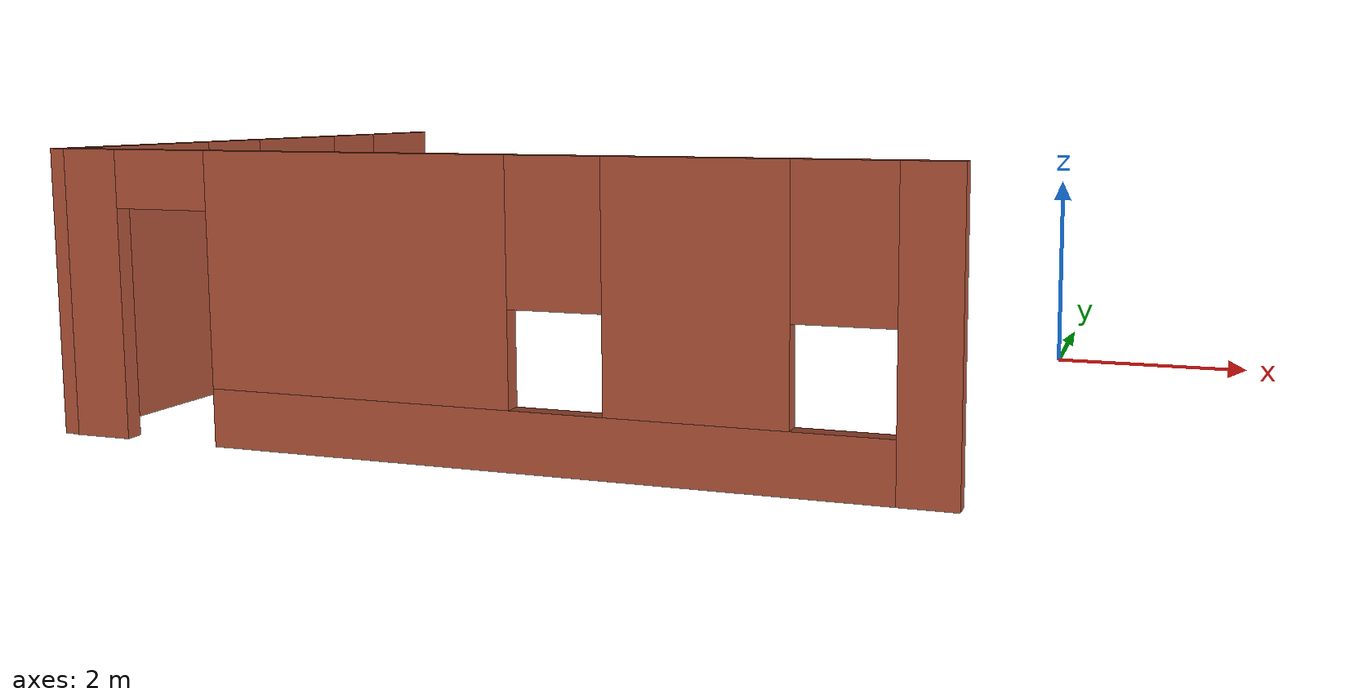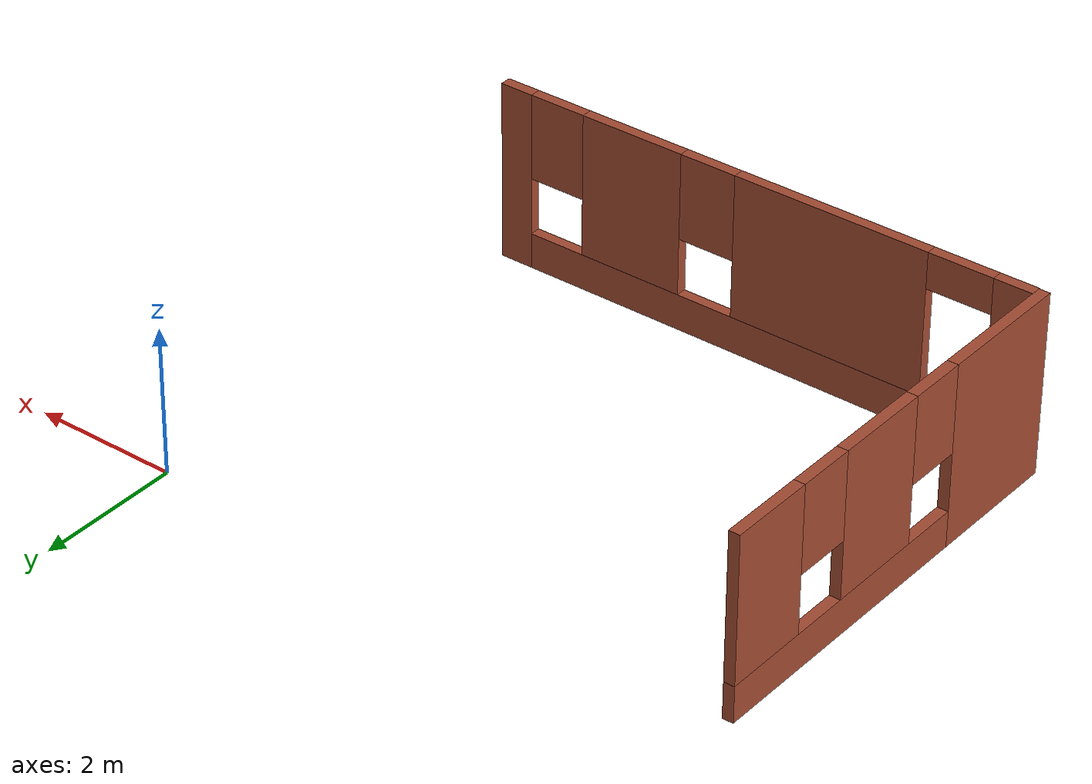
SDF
<?xml version='1.0'?>
<sdf version='1.7'>
  <model name='extentionfloor'>
    <pose>-3.97784 -3.17124 0 0 -0 0</pose>
    <link name='Wall_2'>
      <pose>-3.90284 -0.159732 0 0 -0 1.5708</pose>
      <visual name='Wall_2_Visual_0'>
        <pose>-2.05658 0 1.25 0 -0 0</pose>
        <geometry>
          <box>
            <size>1.88685 0.15 2.5</size>
          </box>
        </geometry>
        <material>
          <script>
            <uri>file://media/materials/scripts/gazebo.material</uri>
            <name>Gazebo/Bricks</name>
          </script>
          <ambient>1 1 1 1</ambient>
        </material>
        <meta>
          <layer>0</layer>
        </meta>
      </visual>
      <collision name='Wall_2_Collision_0'>
        <geometry>
          <box>
            <size>1.88685 0.15 2.5</size>
          </box>
        </geometry>
        <pose>-2.05658 0 1.25 0 -0 0</pose>
      </collision>
      <visual name='Wall_2_Visual_1'>
        <pose>0.943425 0 0.25 0 -0 0</pose>
        <geometry>
          <box>
            <size>4.11315 0.15 0.5</size>
          </box>
        </geometry>
        <material>
          <script>
            <uri>file://media/materials/scripts/gazebo.material</uri>
            <name>Gazebo/Bricks</name>
          </script>
          <ambient>1 1 1 1</ambient>
        </material>
        <meta>
          <layer>0</layer>
        </meta>
      </visual>
      <collision name='Wall_2_Collision_1'>
        <geometry>
          <box>
            <size>4.11315 0.15 0.5</size>
          </box>
        </geometry>
        <pose>0.943425 0 0.25 0 -0 0</pose>
      </collision>
      <visual name='Wall_2_Visual_2'>
        <pose>0.355581 0 1.5 0 -0 0</pose>
        <geometry>
          <box>
            <size>1.33746 0.15 2</size>
          </box>
        </geometry>
        <material>
          <script>
            <uri>file://media/materials/scripts/gazebo.material</uri>
            <name>Gazebo/Bricks</name>
          </script>
          <ambient>1 1 1 1</ambient>
        </material>
        <meta>
          <layer>0</layer>
        </meta>
      </visual>
      <collision name='Wall_2_Collision_2'>
        <geometry>
          <box>
            <size>1.33746 0.15 2</size>
          </box>
        </geometry>
        <pose>0.355581 0 1.5 0 -0 0</pose>
      </collision>
      <visual name='Wall_2_Visual_3'>
        <pose>2.41216 0 1.5 0 -0 0</pose>
        <geometry>
          <box>
            <size>1.17569 0.15 2</size>
          </box>
        </geometry>
        <material>
          <script>
            <uri>file://media/materials/scripts/gazebo.material</uri>
            <name>Gazebo/Bricks</name>
          </script>
          <ambient>1 1 1 1</ambient>
        </material>
        <meta>
          <layer>0</layer>
        </meta>
      </visual>
      <collision name='Wall_2_Collision_3'>
        <geometry>
          <box>
            <size>1.17569 0.15 2</size>
          </box>
        </geometry>
        <pose>2.41216 0 1.5 0 -0 0</pose>
      </collision>
      <visual name='Wall_2_Visual_4'>
        <pose>-0.71315 0 1.9 0 -0 0</pose>
        <geometry>
          <box>
            <size>0.8 0.15 1.2</size>
          </box>
        </geometry>
        <material>
          <script>
            <uri>file://media/materials/scripts/gazebo.material</uri>
            <name>Gazebo/Bricks</name>
          </script>
          <ambient>1 1 1 1</ambient>
        </material>
        <meta>
          <layer>0</layer>
        </meta>
      </visual>
      <collision name='Wall_2_Collision_4'>
        <geometry>
          <box>
            <size>0.8 0.15 1.2</size>
          </box>
        </geometry>
        <pose>-0.71315 0 1.9 0 -0 0</pose>
      </collision>
      <visual name='Wall_2_Visual_5'>
        <pose>1.42431 0 1.9 0 -0 0</pose>
        <geometry>
          <box>
            <size>0.8 0.15 1.2</size>
          </box>
        </geometry>
        <material>
          <script>
            <uri>file://media/materials/scripts/gazebo.material</uri>
            <name>Gazebo/Bricks</name>
          </script>
          <ambient>1 1 1 1</ambient>
        </material>
        <meta>
          <layer>0</layer>
        </meta>
      </visual>
      <collision name='Wall_2_Collision_5'>
        <geometry>
          <box>
            <size>0.8 0.15 1.2</size>
          </box>
        </geometry>
        <pose>1.42431 0 1.9 0 -0 0</pose>
      </collision>
    </link>
    <link name='Wall_4'>
      <pose>0.045679 -3.09624 0 0 -0 3.14159</pose>
      <visual name='Wall_4_Visual_0'>
        <pose>-3.63975 0 1.25 0 -0 0</pose>
        <geometry>
          <box>
            <size>0.470501 0.15 2.5</size>
          </box>
        </geometry>
        <material>
          <script>
            <uri>file://media/materials/scripts/gazebo.material</uri>
            <name>Gazebo/Bricks</name>
          </script>
          <ambient>1 1 1 1</ambient>
        </material>
        <meta>
          <layer>0</layer>
        </meta>
      </visual>
      <collision name='Wall_4_Collision_0'>
        <geometry>
          <box>
            <size>0.470501 0.15 2.5</size>
          </box>
        </geometry>
        <pose>-3.63975 0 1.25 0 -0 0</pose>
      </collision>
      <visual name='Wall_4_Visual_1'>
        <pose>3.61 0 1.25 0 -0 0</pose>
        <geometry>
          <box>
            <size>0.529999 0.15 2.5</size>
          </box>
        </geometry>
        <material>
          <script>
            <uri>file://media/materials/scripts/gazebo.material</uri>
            <name>Gazebo/Bricks</name>
          </script>
          <ambient>1 1 1 1</ambient>
        </material>
        <meta>
          <layer>0</layer>
        </meta>
      </visual>
      <collision name='Wall_4_Collision_1'>
        <geometry>
          <box>
            <size>0.529999 0.15 2.5</size>
          </box>
        </geometry>
        <pose>3.61 0 1.25 0 -0 0</pose>
      </collision>
      <visual name='Wall_4_Visual_2'>
        <pose>-0.479749 0 0.25 0 -0 0</pose>
        <geometry>
          <box>
            <size>5.8495 0.15 0.5</size>
          </box>
        </geometry>
        <material>
          <script>
            <uri>file://media/materials/scripts/gazebo.material</uri>
            <name>Gazebo/Bricks</name>
          </script>
          <ambient>1 1 1 1</ambient>
        </material>
        <meta>
          <layer>0</layer>
        </meta>
      </visual>
      <collision name='Wall_4_Collision_2'>
        <geometry>
          <box>
            <size>5.8495 0.15 0.5</size>
          </box>
        </geometry>
        <pose>-0.479749 0 0.25 0 -0 0</pose>
      </collision>
      <visual name='Wall_4_Visual_3'>
        <pose>-1.86025 0 1.5 0 -0 0</pose>
        <geometry>
          <box>
            <size>1.4885 0.15 2</size>
          </box>
        </geometry>
        <material>
          <script>
            <uri>file://media/materials/scripts/gazebo.material</uri>
            <name>Gazebo/Bricks</name>
          </script>
          <ambient>1 1 1 1</ambient>
        </material>
        <meta>
          <layer>0</layer>
        </meta>
      </visual>
      <collision name='Wall_4_Collision_3'>
        <geometry>
          <box>
            <size>1.4885 0.15 2</size>
          </box>
        </geometry>
        <pose>-1.86025 0 1.5 0 -0 0</pose>
      </collision>
      <visual name='Wall_4_Visual_4'>
        <pose>1.0645 0 1.5 0 -0 0</pose>
        <geometry>
          <box>
            <size>2.761 0.15 2</size>
          </box>
        </geometry>
        <material>
          <script>
            <uri>file://media/materials/scripts/gazebo.material</uri>
            <name>Gazebo/Bricks</name>
          </script>
          <ambient>1 1 1 1</ambient>
        </material>
        <meta>
          <layer>0</layer>
        </meta>
      </visual>
      <collision name='Wall_4_Collision_4'>
        <geometry>
          <box>
            <size>2.761 0.15 2</size>
          </box>
        </geometry>
        <pose>1.0645 0 1.5 0 -0 0</pose>
      </collision>
      <visual name='Wall_4_Visual_5'>
        <pose>-3.0045 0 1.9 0 -0 0</pose>
        <geometry>
          <box>
            <size>0.8 0.15 1.2</size>
          </box>
        </geometry>
        <material>
          <script>
            <uri>file://media/materials/scripts/gazebo.material</uri>
            <name>Gazebo/Bricks</name>
          </script>
          <ambient>1 1 1 1</ambient>
        </material>
        <meta>
          <layer>0</layer>
        </meta>
      </visual>
      <collision name='Wall_4_Collision_5'>
        <geometry>
          <box>
            <size>0.8 0.15 1.2</size>
          </box>
        </geometry>
        <pose>-3.0045 0 1.9 0 -0 0</pose>
      </collision>
      <visual name='Wall_4_Visual_6'>
        <pose>-0.715999 0 1.9 0 -0 0</pose>
        <geometry>
          <box>
            <size>0.8 0.15 1.2</size>
          </box>
        </geometry>
        <material>
          <script>
            <uri>file://media/materials/scripts/gazebo.material</uri>
            <name>Gazebo/Bricks</name>
          </script>
          <ambient>1 1 1 1</ambient>
        </material>
        <meta>
          <layer>0</layer>
        </meta>
      </visual>
      <collision name='Wall_4_Collision_6'>
        <geometry>
          <box>
            <size>0.8 0.15 1.2</size>
          </box>
        </geometry>
        <pose>-0.715999 0 1.9 0 -0 0</pose>
      </collision>
      <visual name='Wall_4_Visual_7'>
        <pose>2.895 0 2.25 0 -0 0</pose>
        <geometry>
          <box>
            <size>0.9 0.15 0.5</size>
          </box>
        </geometry>
        <material>
          <script>
            <uri>file://media/materials/scripts/gazebo.material</uri>
            <name>Gazebo/Bricks</name>
          </script>
          <ambient>1 1 1 1</ambient>
        </material>
        <meta>
          <layer>0</layer>
        </meta>
      </visual>
      <collision name='Wall_4_Collision_7'>
        <geometry>
          <box>
            <size>0.9 0.15 0.5</size>
          </box>
        </geometry>
        <pose>2.895 0 2.25 0 -0 0</pose>
      </collision>
    </link>
    <static>1</static>
  </model>
</sdf>
